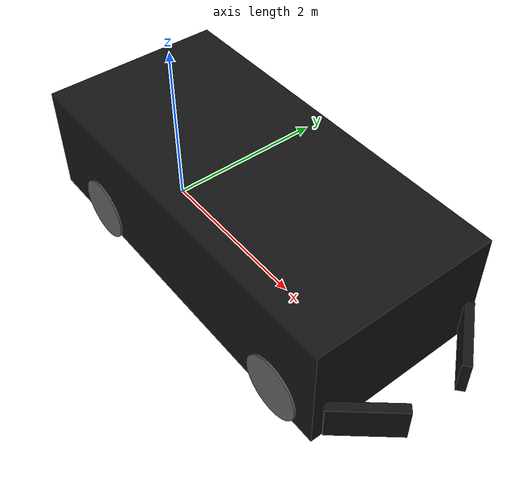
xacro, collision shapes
<?xml version="1.0"?>
<!-- created with Phobos 0.7 -->
<robot name="audibot" xmlns:xacro="http://www.ros.org/wiki/xacro">

  <link name="base_footprint">
    <inertial>
      <origin xyz="1.678053 0 0.815995" rpy="0 0 0"/>
      <mass value="1000.0"/>
      <inertia ixx="50.403343" ixy="0" ixz="0" iyy="115.736679" iyz="0" izz="138.833328"/>
    </inertial>
    <visual name="base_a">
      <origin xyz="1.554524 0 0" rpy="0 0 0"/>
      <geometry>
        <mesh filename="package://car_description/meshes/car/base_a.002.dae" scale="0.01 0.01 0.01"/>
      </geometry>
      <material name="Black.004"/>
    </visual>
    <visual name="base_b">
      <origin xyz="1.554524 0 0" rpy="0 0 0"/>
      <geometry>
        <mesh filename="package://car_description/meshes/car/base_b.002.dae" scale="0.01 0.01 0.01"/>
      </geometry>
      <material name="Glass.002"/>
    </visual>
    <visual name="base_c">
      <origin xyz="1.554524 0 0" rpy="0 0 0"/>
      <geometry>
        <mesh filename="package://car_description/meshes/car/base_c.002.dae" scale="0.01 0.01 0.01"/>
      </geometry>
      <material name="Misc_001"/>
    </visual>
    <visual name="body_a">
      <origin xyz="1.554524 0 0" rpy="0 0 0"/>
      <geometry>
        <mesh filename="package://car_description/meshes/car/body_a.002.dae" scale="0.01 0.01 0.01"/>
      </geometry>
      <material name="Black.004"/>
    </visual>
    <visual name="body_b">
      <origin xyz="1.554524 0 0" rpy="0 0 0"/>
      <geometry>
        <mesh filename="package://car_description/meshes/car/body_b.002.dae" scale="0.01 0.01 0.01"/>
      </geometry>
      <material name="Misc_001"/>
    </visual>
    <visual name="body_c">
      <origin xyz="1.554524 0 0" rpy="0 0 0"/>
      <geometry>
        <mesh filename="package://car_description/meshes/car/body_c.002.dae" scale="0.01 0.01 0.01"/>
      </geometry>
      <material name="Badging.002"/>
    </visual>
    <visual name="body_d">
      <origin xyz="1.554524 0 0" rpy="0 0 0"/>
      <geometry>
        <mesh filename="package://car_description/meshes/car/body_d.002.dae" scale="0.01 0.01 0.01"/>
      </geometry>
      <material name="Bottom.002"/>
    </visual>
    <visual name="body_e">
      <origin xyz="1.554524 0 0" rpy="0 0 0"/>
      <geometry>
        <mesh filename="package://car_description/meshes/car/body_e.002.dae" scale="0.01 0.01 0.01"/>
      </geometry>
      <material name="Body.002"/>
    </visual>
    <visual name="brakelig04">
      <origin xyz="1.554524 0 0" rpy="0 0 0"/>
      <geometry>
        <mesh filename="package://car_description/meshes/car/brakelig04.002.dae" scale="0.01 0.01 0.01"/>
      </geometry>
      <material name="Brakeligh.002"/>
    </visual>
    <visual name="brakelig07">
      <origin xyz="1.554524 0 0" rpy="0 0 0"/>
      <geometry>
        <mesh filename="package://car_description/meshes/car/brakelig07.002.dae" scale="0.01 0.01 0.01"/>
      </geometry>
      <material name="Glass.002"/>
    </visual>
    <visual name="brakelig11">
      <origin xyz="1.554524 0 0" rpy="0 0 0"/>
      <geometry>
        <mesh filename="package://car_description/meshes/car/brakelig11.002.dae" scale="0.01 0.01 0.01"/>
      </geometry>
      <material name="Glass.002"/>
    </visual>
    <visual name="brakelight">
      <origin xyz="1.554524 0 0" rpy="0 0 0"/>
      <geometry>
        <mesh filename="package://car_description/meshes/car/brakelight.002.dae" scale="0.01 0.01 0.01"/>
      </geometry>
      <material name="Brakeligh.002"/>
    </visual>
    <visual name="bumpe">
      <origin xyz="1.554524 0 0" rpy="0 0 0"/>
      <geometry>
        <mesh filename="package://car_description/meshes/car/bumpe.002.dae" scale="0.01 0.01 0.01"/>
      </geometry>
      <material name="Badging.002"/>
    </visual>
    <visual name="bumpe1">
      <origin xyz="1.554524 0 0" rpy="0 0 0"/>
      <geometry>
        <mesh filename="package://car_description/meshes/car/bumpe1.002.dae" scale="0.01 0.01 0.01"/>
      </geometry>
      <material name="Misc_2_001"/>
    </visual>
    <visual name="bumpe2">
      <origin xyz="1.554524 0 0" rpy="0 0 0"/>
      <geometry>
        <mesh filename="package://car_description/meshes/car/bumpe2.002.dae" scale="0.01 0.01 0.01"/>
      </geometry>
      <material name="Chrome.002"/>
    </visual>
    <visual name="bumpe3">
      <origin xyz="1.554524 0 0" rpy="0 0 0"/>
      <geometry>
        <mesh filename="package://car_description/meshes/car/bumpe3.002.dae" scale="0.01 0.01 0.01"/>
      </geometry>
      <material name="Misc_001"/>
    </visual>
    <visual name="bumpe4">
      <origin xyz="1.554524 0 0" rpy="0 0 0"/>
      <geometry>
        <mesh filename="package://car_description/meshes/car/bumpe4.002.dae" scale="0.01 0.01 0.01"/>
      </geometry>
      <material name="Misc_001"/>
    </visual>
    <visual name="bumpe5.000">
      <origin xyz="1.554524 0 0" rpy="0 0 0"/>
      <geometry>
        <mesh filename="package://car_description/meshes/car/bumpe5.002.dae" scale="0.01 0.01 0.01"/>
      </geometry>
      <material name="Body.002"/>
    </visual>
    <visual name="bumpe6">
      <origin xyz="1.554524 0 0" rpy="0 0 0"/>
      <geometry>
        <mesh filename="package://car_description/meshes/car/bumpe6.002.dae" scale="0.01 0.01 0.01"/>
      </geometry>
      <material name="Licens.002"/>
    </visual>
    <visual name="bumper_fro">
      <origin xyz="1.554524 0 0" rpy="0 0 0"/>
      <geometry>
        <mesh filename="package://car_description/meshes/car/bumper_fro.002.dae" scale="0.01 0.01 0.01"/>
      </geometry>
      <material name="Black.004"/>
    </visual>
    <visual name="bumper_r01">
      <origin xyz="1.554524 0 0" rpy="0 0 0"/>
      <geometry>
        <mesh filename="package://car_description/meshes/car/bumper_r01.002.dae" scale="0.01 0.01 0.01"/>
      </geometry>
      <material name="Black.004"/>
    </visual>
    <visual name="bumper_r02">
      <origin xyz="1.554524 0 0" rpy="0 0 0"/>
      <geometry>
        <mesh filename="package://car_description/meshes/car/bumper_r02.002.dae" scale="0.01 0.01 0.01"/>
      </geometry>
      <material name="Brakeligh.002"/>
    </visual>
    <visual name="bumper_r03">
      <origin xyz="1.554524 0 0" rpy="0 0 0"/>
      <geometry>
        <mesh filename="package://car_description/meshes/car/bumper_r03.002.dae" scale="0.01 0.01 0.01"/>
      </geometry>
      <material name="Misc_001"/>
    </visual>
    <visual name="bumper_r04">
      <origin xyz="1.554524 0 0" rpy="0 0 0"/>
      <geometry>
        <mesh filename="package://car_description/meshes/car/bumper_r04.002.dae" scale="0.01 0.01 0.01"/>
      </geometry>
      <material name="Body.002"/>
    </visual>
    <visual name="door_">
      <origin xyz="1.554524 0 0" rpy="0 0 0"/>
      <geometry>
        <mesh filename="package://car_description/meshes/car/door_.002.dae" scale="0.01 0.01 0.01"/>
      </geometry>
      <material name="Badging.002"/>
    </visual>
    <visual name="door_1">
      <origin xyz="1.554524 0 0" rpy="0 0 0"/>
      <geometry>
        <mesh filename="package://car_description/meshes/car/door_1.002.dae" scale="0.01 0.01 0.01"/>
      </geometry>
      <material name="Interior.002"/>
    </visual>
    <visual name="door_2">
      <origin xyz="1.554524 0 0" rpy="0 0 0"/>
      <geometry>
        <mesh filename="package://car_description/meshes/car/door_2.002.dae" scale="0.01 0.01 0.01"/>
      </geometry>
      <material name="Interior.002"/>
    </visual>
    <visual name="door_3">
      <origin xyz="1.554524 0 0" rpy="0 0 0"/>
      <geometry>
        <mesh filename="package://car_description/meshes/car/door_3.002.dae" scale="0.01 0.01 0.01"/>
      </geometry>
      <material name="Badging.002"/>
    </visual>
    <visual name="door_left_">
      <origin xyz="1.554524 0 0" rpy="0 0 0"/>
      <geometry>
        <mesh filename="package://car_description/meshes/car/door_left_.002.dae" scale="0.01 0.01 0.01"/>
      </geometry>
      <material name="Body.002"/>
    </visual>
    <visual name="door_right">
      <origin xyz="1.554524 0 0" rpy="0 0 0"/>
      <geometry>
        <mesh filename="package://car_description/meshes/car/door_right.002.dae" scale="0.01 0.01 0.01"/>
      </geometry>
      <material name="Body.002"/>
    </visual>
    <visual name="exhaust_a">
      <origin xyz="1.554524 0 0" rpy="0 0 0"/>
      <geometry>
        <mesh filename="package://car_description/meshes/car/exhaust_a.002.dae" scale="0.01 0.01 0.01"/>
      </geometry>
      <material name="Black.004"/>
    </visual>
    <visual name="exhaust_b">
      <origin xyz="1.554524 0 0" rpy="0 0 0"/>
      <geometry>
        <mesh filename="package://car_description/meshes/car/exhaust_b.002.dae" scale="0.01 0.01 0.01"/>
      </geometry>
      <material name="Chrome.002"/>
    </visual>
    <visual name="fende">
      <origin xyz="1.554524 0 0" rpy="0 0 0"/>
      <geometry>
        <mesh filename="package://car_description/meshes/car/fende.002.dae" scale="0.01 0.01 0.01"/>
      </geometry>
      <material name="Body.002"/>
    </visual>
    <visual name="fende1">
      <origin xyz="1.554524 0 0" rpy="0 0 0"/>
      <geometry>
        <mesh filename="package://car_description/meshes/car/fende1.002.dae" scale="0.01 0.01 0.01"/>
      </geometry>
      <material name="Body.002"/>
    </visual>
    <visual name="fender_fro">
      <origin xyz="1.554524 0 0" rpy="0 0 0"/>
      <geometry>
        <mesh filename="package://car_description/meshes/car/fender_fro.002.dae" scale="0.01 0.01 0.01"/>
      </geometry>
      <material name="Black.004"/>
    </visual>
    <visual name="headligh03">
      <origin xyz="1.554524 0 0" rpy="0 0 0"/>
      <geometry>
        <mesh filename="package://car_description/meshes/car/headligh03.002.dae" scale="0.01 0.01 0.01"/>
      </geometry>
      <material name="Glass.002"/>
    </visual>
    <visual name="headligh13">
      <origin xyz="1.554524 0 0" rpy="0 0 0"/>
      <geometry>
        <mesh filename="package://car_description/meshes/car/headligh13.002.dae" scale="0.01 0.01 0.01"/>
      </geometry>
      <material name="Headlight.002"/>
    </visual>
    <visual name="headlight_">
      <origin xyz="1.554524 0 0" rpy="0 0 0"/>
      <geometry>
        <mesh filename="package://car_description/meshes/car/headlight_.002.dae" scale="0.01 0.01 0.01"/>
      </geometry>
      <material name="Glass.002"/>
    </visual>
    <visual name="hood_a01">
      <origin xyz="1.554524 0 0" rpy="0 0 0"/>
      <geometry>
        <mesh filename="package://car_description/meshes/car/hood_a01.002.dae" scale="0.01 0.01 0.01"/>
      </geometry>
      <material name="Badging.002"/>
    </visual>
    <visual name="hood_a02">
      <origin xyz="1.554524 0 0" rpy="0 0 0"/>
      <geometry>
        <mesh filename="package://car_description/meshes/car/hood_a02.002.dae" scale="0.01 0.01 0.01"/>
      </geometry>
      <material name="Body.002"/>
    </visual>
    <visual name="sidem">
      <origin xyz="1.554524 0 0" rpy="0 0 0"/>
      <geometry>
        <mesh filename="package://car_description/meshes/car/sidem.002.dae" scale="0.01 0.01 0.01"/>
      </geometry>
      <material name="Body.002"/>
    </visual>
    <visual name="sidem1">
      <origin xyz="1.554524 0 0" rpy="0 0 0"/>
      <geometry>
        <mesh filename="package://car_description/meshes/car/sidem1.002.dae" scale="0.01 0.01 0.01"/>
      </geometry>
      <material name="Body.002"/>
    </visual>
    <visual name="sidemirr04">
      <origin xyz="1.554524 0 0" rpy="0 0 0"/>
      <geometry>
        <mesh filename="package://car_description/meshes/car/sidemirr04.002.dae" scale="0.01 0.01 0.01"/>
      </geometry>
      <material name="Chrome.002"/>
    </visual>
    <visual name="sidemirror">
      <origin xyz="1.554524 0 0" rpy="0 0 0"/>
      <geometry>
        <mesh filename="package://car_description/meshes/car/sidemirror.002.dae" scale="0.01 0.01 0.01"/>
      </geometry>
      <material name="Chrome.002"/>
    </visual>
    <visual name="skirt">
      <origin xyz="1.554524 0 0" rpy="0 0 0"/>
      <geometry>
        <mesh filename="package://car_description/meshes/car/skirt.002.dae" scale="0.01 0.01 0.01"/>
      </geometry>
      <material name="Body.002"/>
    </visual>
    <visual name="skirt1">
      <origin xyz="1.554524 0 0" rpy="0 0 0"/>
      <geometry>
        <mesh filename="package://car_description/meshes/car/skirt1.002.dae" scale="0.01 0.01 0.01"/>
      </geometry>
      <material name="Body.002"/>
    </visual>
    <visual name="skirt_left">
      <origin xyz="1.554524 0 0" rpy="0 0 0"/>
      <geometry>
        <mesh filename="package://car_description/meshes/car/skirt_left.002.dae" scale="0.01 0.01 0.01"/>
      </geometry>
      <material name="Black.004"/>
    </visual>
    <visual name="skirt_righ">
      <origin xyz="1.554524 0 0" rpy="0 0 0"/>
      <geometry>
        <mesh filename="package://car_description/meshes/car/skirt_righ.002.dae" scale="0.01 0.01 0.01"/>
      </geometry>
      <material name="Black.004"/>
    </visual>
    <visual name="trunk_a">
      <origin xyz="1.554524 0 0" rpy="0 0 0"/>
      <geometry>
        <mesh filename="package://car_description/meshes/car/trunk_a.002.dae" scale="0.01 0.01 0.01"/>
      </geometry>
      <material name="Body.002"/>
    </visual>
    <visual name="trunk_b">
      <origin xyz="1.554524 0 0" rpy="0 0 0"/>
      <geometry>
        <mesh filename="package://car_description/meshes/car/trunk_b.002.dae" scale="0.01 0.01 0.01"/>
      </geometry>
      <material name="Black.004"/>
    </visual>
    <visual name="windo">
      <origin xyz="1.554524 0 0" rpy="0 0 0"/>
      <geometry>
        <mesh filename="package://car_description/meshes/car/windo.002.dae" scale="0.01 0.01 0.01"/>
      </geometry>
      <material name="Glass_black_.002"/>
    </visual>
    <visual name="windo1">
      <origin xyz="1.554524 0 0" rpy="0 0 0"/>
      <geometry>
        <mesh filename="package://car_description/meshes/car/windo1.002.dae" scale="0.01 0.01 0.01"/>
      </geometry>
      <material name="Glass_black_.002"/>
    </visual>
    <visual name="window_f04">
      <origin xyz="1.554524 0 0" rpy="0 0 0"/>
      <geometry>
        <mesh filename="package://car_description/meshes/car/window_f04.002.dae" scale="0.01 0.01 0.01"/>
      </geometry>
      <material name="Glass.002"/>
    </visual>
    <visual name="window_f08">
      <origin xyz="1.554524 0 0" rpy="0 0 0"/>
      <geometry>
        <mesh filename="package://car_description/meshes/car/window_f08.002.dae" scale="0.01 0.01 0.01"/>
      </geometry>
      <material name="Glass.002"/>
    </visual>
    <visual name="window_fro">
      <origin xyz="1.554524 0 0" rpy="0 0 0"/>
      <geometry>
        <mesh filename="package://car_description/meshes/car/window_fro.002.dae" scale="0.01 0.01 0.01"/>
      </geometry>
      <material name="Glass.002"/>
    </visual>
    <visual name="window_r04">
      <origin xyz="1.554524 0 0" rpy="0 0 0"/>
      <geometry>
        <mesh filename="package://car_description/meshes/car/window_r04.002.dae" scale="0.01 0.01 0.01"/>
      </geometry>
      <material name="Glass.002"/>
    </visual>
    <visual name="window_r07">
      <origin xyz="1.554524 0 0" rpy="0 0 0"/>
      <geometry>
        <mesh filename="package://car_description/meshes/car/window_r07.002.dae" scale="0.01 0.01 0.01"/>
      </geometry>
      <material name="Glass.002"/>
    </visual>
    <visual name="window_rea">
      <origin xyz="1.554524 0 0" rpy="0 0 0"/>
      <geometry>
        <mesh filename="package://car_description/meshes/car/window_rea.002.dae" scale="0.01 0.01 0.01"/>
      </geometry>
      <material name="Glass.002"/>
    </visual>
    <collision name="chassis_collision">
      <origin xyz="1.398053 0 0.815995" rpy="0 0 0"/>
      <geometry>
        <box size="4.479999 2.1 1.280001"/>
      </geometry>
    </collision>
    <collision name="front_left_bumper">
      <origin xyz="3.898413 0.64447 0.477368" rpy="0 0 0.698132"/>
      <geometry>
        <box size="0.1 0.76 0.4"/>
      </geometry>
    </collision>
    <collision name="front_right_bumper">
      <origin xyz="3.898413 -0.64447 0.477368" rpy="0 0 -0.698132"/>
      <geometry>
        <box size="0.1 0.76 0.4"/>
      </geometry>
    </collision>
  </link>

  <link name="wheel_fl">
    <inertial>
      <origin xyz="0 0 -0.12" rpy="0 0 0"/>
      <mass value="10.0"/>
      <inertia ixx="0.037227" ixy="0" ixz="0" iyy="0.037227" iyz="0" izz="0.063878"/>
    </inertial>
    <visual name="brake1.001">
      <origin xyz="0 0 0" rpy="1.570796 0 0"/>
      <geometry>
        <mesh filename="package://car_description/meshes/car/brake1.005.dae" scale="0.01 0.01 0.01"/>
      </geometry>
      <material name="Brackdisc_001.001"/>
    </visual>
    <visual name="wheel7.001">
      <origin xyz="0 0 0" rpy="1.570796 0 0"/>
      <geometry>
        <mesh filename="package://car_description/meshes/car/wheel7.005.dae" scale="0.01 0.01 0.01"/>
      </geometry>
      <material name="Wheel_001.001"/>
    </visual>
    <visual name="wheel8.001">
      <origin xyz="0 0 0" rpy="1.570796 0 0"/>
      <geometry>
        <mesh filename="package://car_description/meshes/car/wheel8.005.dae" scale="0.01 0.01 0.01"/>
      </geometry>
      <material name="Tire_001.001"/>
    </visual>
    <visual name="wheel_tire.001">
      <origin xyz="0 0 0" rpy="1.570796 0 0"/>
      <geometry>
        <mesh filename="package://car_description/meshes/car/wheel_tire.005.dae" scale="0.01 0.01 0.01"/>
      </geometry>
      <material name="Black_001.001"/>
    </visual>
    <collision name="wheel_fl_collision">
      <origin xyz="0 0 -0.12" rpy="-3.141593 0 0"/>
      <geometry>
        <cylinder radius="0.357429" length="0.251907"/>
      </geometry>
    </collision>
  </link>

  <link name="wheel_fl_steer">
    <inertial>
      <origin xyz="0 0 0" rpy="0 0 0"/>
      <mass value="1.0"/>
      <inertia ixx="0.037227" ixy="0" ixz="0" iyy="0.037227" iyz="0" izz="0.063878"/>
    </inertial>
  </link>

  <link name="wheel_fr">
    <inertial>
      <origin xyz="0 0 0" rpy="1.570796 0 0"/>
      <mass value="10.0"/>
      <inertia ixx="0.037227" ixy="0" ixz="0" iyy="0.037227" iyz="0" izz="0.063878"/>
    </inertial>
    <visual name="brake1.002">
      <origin xyz="0 0 0" rpy="-1.570796 0 0"/>
      <geometry>
        <mesh filename="package://car_description/meshes/car/brake1.000.dae" scale="0.01 0.01 0.01"/>
      </geometry>
      <material name="Brackdisc_001.002"/>
    </visual>
    <visual name="wheel7.002">
      <origin xyz="0 0 0" rpy="-1.570796 0 0"/>
      <geometry>
        <mesh filename="package://car_description/meshes/car/wheel7.000.dae" scale="0.01 0.01 0.01"/>
      </geometry>
      <material name="Wheel_001.002"/>
    </visual>
    <visual name="wheel8.002">
      <origin xyz="0 0 0" rpy="-1.570796 0 0"/>
      <geometry>
        <mesh filename="package://car_description/meshes/car/wheel8.000.dae" scale="0.01 0.01 0.01"/>
      </geometry>
      <material name="Tire_001.002"/>
    </visual>
    <visual name="wheel_tire.002">
      <origin xyz="0 0 0" rpy="-1.570796 0 0"/>
      <geometry>
        <mesh filename="package://car_description/meshes/car/wheel_tire.000.dae" scale="0.01 0.01 0.01"/>
      </geometry>
      <material name="Black_001.002"/>
    </visual>
    <collision name="wheel_fl_collision.001">
      <origin xyz="0 0 0.12" rpy="-3.141593 0 0"/>
      <geometry>
        <cylinder radius="0.357429" length="0.251907"/>
      </geometry>
    </collision>
  </link>

  <link name="wheel_fr_steer">
    <inertial>
      <origin xyz="0 0 0" rpy="0 0 0"/>
      <mass value="1.0"/>
      <inertia ixx="0.037227" ixy="0" ixz="0" iyy="0.037227" iyz="0" izz="0.063878"/>
    </inertial>
  </link>

  <link name="wheel_rl">
    <inertial>
      <origin xyz="0 0 -0.12" rpy="0 0 0"/>
      <mass value="10.0"/>
      <inertia ixx="0.037227" ixy="0" ixz="0" iyy="0.037227" iyz="0" izz="0.063878"/>
    </inertial>
    <visual name="brake1">
      <origin xyz="0 0 0" rpy="1.570796 0 0"/>
      <geometry>
        <mesh filename="package://car_description/meshes/car/brake1.004.dae" scale="0.01 0.01 0.01"/>
      </geometry>
      <material name="Brackdisc_001"/>
    </visual>
    <visual name="wheel7">
      <origin xyz="0 0 0" rpy="1.570796 0 0"/>
      <geometry>
        <mesh filename="package://car_description/meshes/car/wheel7.004.dae" scale="0.01 0.01 0.01"/>
      </geometry>
      <material name="Wheel_001"/>
    </visual>
    <visual name="wheel8">
      <origin xyz="0 0 0" rpy="1.570796 0 0"/>
      <geometry>
        <mesh filename="package://car_description/meshes/car/wheel8.004.dae" scale="0.01 0.01 0.01"/>
      </geometry>
      <material name="Tire_001"/>
    </visual>
    <visual name="wheel_tire">
      <origin xyz="0 0 0" rpy="1.570796 0 0"/>
      <geometry>
        <mesh filename="package://car_description/meshes/car/wheel_tire.004.dae" scale="0.01 0.01 0.01"/>
      </geometry>
      <material name="Black_001"/>
    </visual>
    <collision name="wheel_rl_collision">
      <origin xyz="0 0 -0.12" rpy="-3.141593 0 0"/>
      <geometry>
        <cylinder radius="0.357429" length="0.251907"/>
      </geometry>
    </collision>
  </link>

  <link name="wheel_rr">
    <inertial>
      <origin xyz="0 0 0" rpy="1.570796 0 0"/>
      <mass value="10.0"/>
      <inertia ixx="0.037227" ixy="0" ixz="0" iyy="0.037227" iyz="0" izz="0.063878"/>
    </inertial>
    <visual name="brake1.003">
      <origin xyz="0 0 0" rpy="-1.570796 0 0"/>
      <geometry>
        <mesh filename="package://car_description/meshes/car/brake1.001.dae" scale="0.01 0.01 0.01"/>
      </geometry>
      <material name="Brackdisc_001.003"/>
    </visual>
    <visual name="wheel7.003">
      <origin xyz="0 0 0" rpy="-1.570796 0 0"/>
      <geometry>
        <mesh filename="package://car_description/meshes/car/wheel7.001.dae" scale="0.01 0.01 0.01"/>
      </geometry>
      <material name="Wheel_001.003"/>
    </visual>
    <visual name="wheel8.003">
      <origin xyz="0 0 0" rpy="-1.570796 0 0"/>
      <geometry>
        <mesh filename="package://car_description/meshes/car/wheel8.001.dae" scale="0.01 0.01 0.01"/>
      </geometry>
      <material name="Tire_001.003"/>
    </visual>
    <visual name="wheel_tire.003">
      <origin xyz="0 0 0" rpy="-1.570796 0 0"/>
      <geometry>
        <mesh filename="package://car_description/meshes/car/wheel_tire.001.dae" scale="0.01 0.01 0.01"/>
      </geometry>
      <material name="Black_001.003"/>
    </visual>
    <collision name="wheel_rr_collision">
      <origin xyz="0 0 0.12" rpy="-3.141593 0 0"/>
      <geometry>
        <cylinder radius="0.357429" length="0.251907"/>
      </geometry>
    </collision>
  </link>

  <!-- Joints -->
  <joint name="wheel_fl" type="continuous">
    <origin xyz="-3e-05 0.11 0" rpy="-1.570796 0 0"/>
    <parent link="wheel_fl_steer"/>
    <child link="wheel_fl"/>
    <axis xyz="0 0 1.0"/>
    <limit effort="0.0" velocity="125.0"/>
  </joint>

  <joint name="wheel_fl_steer" type="revolute">
    <origin xyz="3.0537 0.95 0.36" rpy="0 0 0"/>
    <parent link="base_footprint"/>
    <child link="wheel_fl_steer"/>
    <axis xyz="0 0 1.0"/>
    <limit lower="-0.5" upper="0.5" effort="5000.0" velocity="0.5"/>
  </joint>

  <joint name="wheel_fr" type="continuous">
    <origin xyz="-3e-05 -0.11 0" rpy="-1.570796 0 0"/>
    <parent link="wheel_fr_steer"/>
    <child link="wheel_fr"/>
    <axis xyz="0 0 1.0"/>
    <limit effort="0.0" velocity="125.0"/>
  </joint>

  <joint name="wheel_fr_steer" type="revolute">
    <origin xyz="3.0537 -0.95 0.36" rpy="0 0 0"/>
    <parent link="base_footprint"/>
    <child link="wheel_fr_steer"/>
    <axis xyz="0 0 1.0"/>
    <limit lower="-0.5" upper="0.5" effort="5000.0" velocity="0.5"/>
  </joint>

  <joint name="wheel_rl" type="continuous">
    <origin xyz="0.03 1.08 0.36" rpy="-1.570796 0 0"/>
    <parent link="base_footprint"/>
    <child link="wheel_rl"/>
    <axis xyz="0 0 1.0"/>
    <limit effort="5000.0" velocity="125.0"/>
  </joint>

  <joint name="wheel_rr" type="continuous">
    <origin xyz="0.03 -1.06 0.36" rpy="-1.570796 0 0"/>
    <parent link="base_footprint"/>
    <child link="wheel_rr"/>
    <axis xyz="0 0 1.0"/>
    <limit effort="5000.0" velocity="125.0"/>
  </joint>

  <!-- Material Definition -->
  <material name="Badging.002">
    <color rgba="0.398431 0.398431 0.398431 1.0"/>
  </material>

  <material name="Black.004">
    <color rgba="0.078431 0.078431 0.078431 1.0"/>
  </material>

  <material name="Black_001">
    <color rgba="0.078431 0.078431 0.078431 1.0"/>
  </material>

  <material name="Black_001.001">
    <color rgba="0.078431 0.078431 0.078431 1.0"/>
  </material>

  <material name="Black_001.002">
    <color rgba="0.078431 0.078431 0.078431 1.0"/>
  </material>

  <material name="Black_001.003">
    <color rgba="0.078431 0.078431 0.078431 1.0"/>
  </material>

  <material name="Body.002">
    <color rgba="0.345098 0 0 1.0"/>
  </material>

  <material name="Bottom.002">
    <color rgba="0.398431 0.398431 0.398431 1.0"/>
  </material>

  <material name="Brackdisc_001">
    <color rgba="0.398431 0.398431 0.398431 1.0"/>
  </material>

  <material name="Brackdisc_001.001">
    <color rgba="0.398431 0.398431 0.398431 1.0"/>
  </material>

  <material name="Brackdisc_001.002">
    <color rgba="0.398431 0.398431 0.398431 1.0"/>
  </material>

  <material name="Brackdisc_001.003">
    <color rgba="0.398431 0.398431 0.398431 1.0"/>
  </material>

  <material name="Brakeligh.002">
    <color rgba="0.398431 0.398431 0.398431 1.0"/>
  </material>

  <material name="Chrome.002">
    <color rgba="0 0 0 1.0"/>
  </material>

  <material name="Glass.002">
    <color rgba="0.197647 0.197647 0.197647 1.0"/>
  </material>

  <material name="Glass_black_.002">
    <color rgba="0.078431 0.078431 0.078431 1.0"/>
  </material>

  <material name="Headlight.002">
    <color rgba="0.398431 0.398431 0.398431 1.0"/>
  </material>

  <material name="Interior.002">
    <color rgba="0.398431 0.398431 0.398431 1.0"/>
  </material>

  <material name="Licens.002">
    <color rgba="0.398431 0.398431 0.398431 1.0"/>
  </material>

  <material name="Misc_001">
    <color rgba="0.398431 0.398431 0.398431 1.0"/>
  </material>

  <material name="Misc_2_001">
    <color rgba="0.398431 0.398431 0.398431 1.0"/>
  </material>

  <material name="Tire_001">
    <color rgba="0.398431 0.398431 0.398431 1.0"/>
  </material>

  <material name="Tire_001.001">
    <color rgba="0.398431 0.398431 0.398431 1.0"/>
  </material>

  <material name="Tire_001.002">
    <color rgba="0.398431 0.398431 0.398431 1.0"/>
  </material>

  <material name="Tire_001.003">
    <color rgba="0.398431 0.398431 0.398431 1.0"/>
  </material>

  <material name="Wheel_001">
    <color rgba="0.398431 0.398431 0.398431 1.0"/>
  </material>

  <material name="Wheel_001.001">
    <color rgba="0.398431 0.398431 0.398431 1.0"/>
  </material>

  <material name="Wheel_001.002">
    <color rgba="0.398431 0.398431 0.398431 1.0"/>
  </material>

  <material name="Wheel_001.003">
    <color rgba="0.398431 0.398431 0.398431 1.0"/>
  </material>

</robot>
